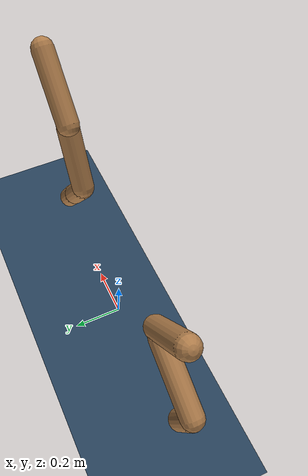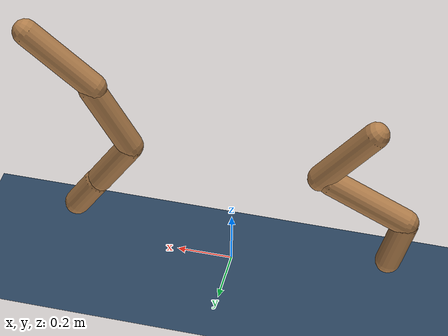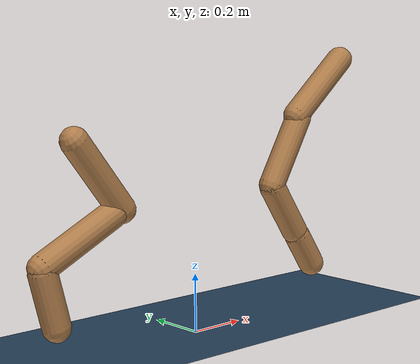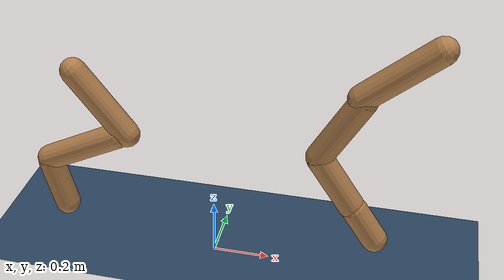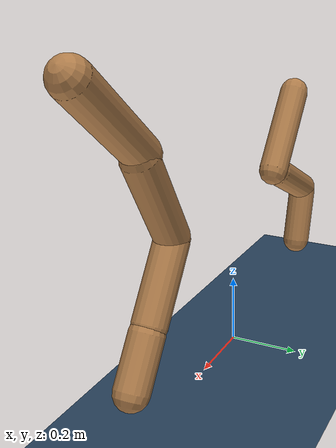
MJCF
<mujoco model="cheetah">

  <compiler settotalmass="14"/>
  <asset>
    <texture name="grid" type="2d" builtin="checker" rgb1=".1 .2 .3" rgb2=".2 .3 .4" width="300" height="300" mark="edge" markrgb=".2 .3 .4"/>
    <material name="grid" texture="grid" texrepeat="1 1" texuniform="true" reflectance=".2"/>
    <material name="self" rgba=".7 .5 .3 1"/>
    <material name="self_default" rgba=".7 .5 .3 1"/>
    <material name="self_highlight" rgba="0 .5 .3 1"/>
    <material name="effector" rgba=".7 .4 .2 1"/>
    <material name="effector_default" rgba=".7 .4 .2 1"/>
    <material name="effector_highlight" rgba="0 .5 .3 1"/>
    <material name="decoration" rgba=".3 .5 .7 1"/>
    <material name="eye" rgba="0 .2 1 1"/>
    <material name="target" rgba=".6 .3 .3 1"/>
    <material name="target_default" rgba=".6 .3 .3 1"/>
    <material name="target_highlight" rgba=".6 .3 .3 .4"/>
    <material name="site" rgba=".5 .5 .5 .3"/>
  </asset>
  <default>
    <default class="cheetah">
      <joint limited="true" damping=".01" armature=".1" stiffness="8" type="hinge" axis="0 1 0"/>
      <geom contype="1" conaffinity="1" condim="3" friction=".4 .1 .1" material="self"/>
    </default>
    <default class="free">
      <joint limited="false" damping="0" armature="0" stiffness="0"/>
    </default>
    <motor ctrllimited="true" ctrlrange="-1 1"/>
  </default>

  <statistic center="0 0 .7" extent="2"/>

  <option timestep="0.01"/>

  <worldbody>
    <geom name="ground" type="plane" conaffinity="1" pos="98 0 0" size="100 .8 .5" material="grid"/>
    <body name="torso" pos="0 0 .7" childclass="cheetah">
      <light name="light" pos="0 0 2" mode="trackcom"/>
      <camera name="side" pos="0 -3 0" quat="0.707 0.707 0 0" mode="trackcom"/>
      <camera name="back" pos="-1.8 -1.3 0.8" xyaxes="0.45 -0.9 0 0.3 0.15 0.94" mode="trackcom"/>
      <joint name="rootx" type="slide" axis="1 0 0" class="free"/>
      <joint name="rootz" type="slide" axis="0 0 1" class="free"/>
      <joint name="rooty" type="hinge" axis="0 1 0" class="free"/>
      <geom name="head" type="capsule" pos=".6 0 .1" euler="0 50 0" size="0.046 .15"/>
      <body name="bthigh" pos="-.5 0 0">
        <joint name="bthigh" range="-30 60" stiffness="240" damping="6"/>
        <geom name="bthigh" type="capsule" pos=".1 0 -.13" euler="0 -218 0" size="0.046 .145"/>
        <body name="bshin" pos=".16 0 -.25">
          <joint name="bshin" range="-50 50" stiffness="180" damping="4.5"/>
          <geom name="bshin" type="capsule" pos="-.14 0 -.07" euler="0 -116 0" size="0.046 .15"/>
          <body name="bfoot" pos="-.28 0 -.14">
            <joint name="bfoot" range="-230 50" stiffness="120" damping="3"/>
            <geom name="bfoot" type="capsule" pos=".03 0 -.097" euler="0 -15 0" size="0.046 .094"/>
          </body>
        </body>
      </body>
      <body name="fthigh" pos=".5 0 0">
        <joint name="fthigh" range="-57 .40" stiffness="180" damping="4.5"/>
        <geom name="fthigh" type="capsule" pos="-.07 0 -.12" euler="0 30 0" size="0.046 .133"/>
        <body name="fshin" pos="-.14 0 -.24">
          <joint name="fshin" range="-70 50" stiffness="120" damping="3"/>
          <geom name="fshin" type="capsule" pos=".065 0 -.09" euler="0 -34 0" size="0.046 .106"/>
          <body name="ffoot" pos=".13 0 -.18">
            <joint name="ffoot" range="-28 28" stiffness="60" damping="1.5"/>
            <geom name="ffoot" type="capsule" pos=".045 0 -.07" euler="0 -34 0" size="0.046 .07"/>
          </body>
        </body>
      </body>
    </body>
  </worldbody>

  <sensor>
    <subtreelinvel name="torso_subtreelinvel" body="torso"/>
  </sensor>

  <actuator>
    <motor name="bthigh" joint="bthigh" gear="120" />
    <motor name="bshin" joint="bshin" gear="90" />
    <motor name="bfoot" joint="bfoot" gear="60" />
    <motor name="fthigh" joint="fthigh" gear="90" />
    <motor name="fshin" joint="fshin" gear="60" />
    <motor name="ffoot" joint="ffoot" gear="30" />
  </actuator>
</mujoco>
